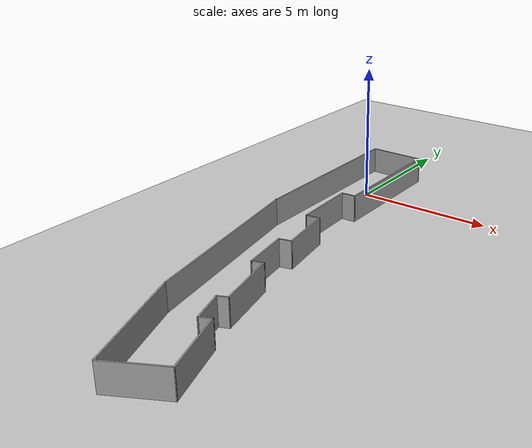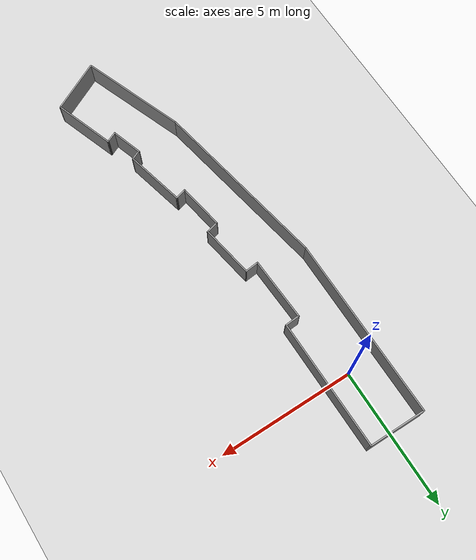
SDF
<sdf version="1.4">
  <world name="default">

    <!-- A global light source -->
    <include>
      <uri>model://sun</uri>
    </include>

    <!-- A ground plane -->
    <include>
      <uri>model://ground_plane</uri>
    </include>

    <physics type="ode">
      <real_time_update_rate>1000.0</real_time_update_rate>
      <max_step_size>0.001</max_step_size>
      <real_time_factor>1</real_time_factor>
      <ode>
        <solver>
          <type>quick</type>
          <iters>150</iters>
          <precon_iters>0</precon_iters>
          <sor>1.400000</sor>
          <use_dynamic_moi_rescaling>1</use_dynamic_moi_rescaling>
        </solver>
        <constraints>
          <cfm>0.00001</cfm>
          <erp>0.2</erp>
          <contact_max_correcting_vel>2000.000000</contact_max_correcting_vel>
          <contact_surface_layer>0.01000</contact_surface_layer>
        </constraints>
      </ode>
    </physics>

    <!-- ITI Gang -->
    <include>
      <uri>model://itiGang</uri>
	<pose>1.116 -6.095 0 0 0 -1.59</pose>
    </include>

    <scene>
      <ambient>0.4 0.4 0.4 1</ambient>
      <background>0.7 0.7 0.7 1</background>
      <shadows>true</shadows>
    </scene>

    <gui fullscreen='0'>
      <camera name='user_camera'>
        <pose>0.0 0.0 17.0 0 1.5708 0</pose>
        <view_controller>orbit</view_controller>
      </camera>
    </gui>
  </world>
</sdf>

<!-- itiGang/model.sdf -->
<sdf version='1.6'>
  <model name='itiGang'>
    <pose frame=''>1.03233 -1.27381 0 0 -0 0</pose>
    <link name='Wall_0'>
      <collision name='Wall_0_Collision'>
        <geometry>
          <box>
            <size>2.11869 0.05 1</size>
          </box>
        </geometry>
        <pose frame=''>0 0 0.5 0 -0 0</pose>
      </collision>
      <visual name='Wall_0_Visual'>
        <pose frame=''>0 0 0.5 0 -0 0</pose>
        <geometry>
          <box>
            <size>2.11869 0.05 1</size>
          </box>
        </geometry>
        <material>
          <script>
            <uri>file://media/materials/scripts/gazebo.material</uri>
            <name>Gazebo/Grey</name>
          </script>
          <ambient>1 1 1 1</ambient>
        </material>
      </visual>
      <pose frame=''>-8.43733 -1.36519 0 0 0 -1.55629</pose>
    </link>
    <link name='Wall_1'>
      <collision name='Wall_1_Collision'>
        <geometry>
          <box>
            <size>6.68346 0.05 1</size>
          </box>
        </geometry>
        <pose frame=''>0 0 0.5 0 -0 0</pose>
      </collision>
      <visual name='Wall_1_Visual'>
        <pose frame=''>0 0 0.5 0 -0 0</pose>
        <geometry>
          <box>
            <size>6.68346 0.05 1</size>
          </box>
        </geometry>
        <material>
          <script>
            <uri>file://media/materials/scripts/gazebo.material</uri>
            <name>Gazebo/Grey</name>
          </script>
          <ambient>1 1 1 1</ambient>
        </material>
      </visual>
      <pose frame=''>-5.10683 -2.30819 0 0 -0 0.02744</pose>
    </link>
    <link name='Wall_12'>
      <collision name='Wall_12_Collision'>
        <geometry>
          <box>
            <size>2.06476 0.05 1</size>
          </box>
        </geometry>
        <pose frame=''>0 0 0.5 0 -0 0</pose>
      </collision>
      <visual name='Wall_12_Visual'>
        <pose frame=''>0 0 0.5 0 -0 0</pose>
        <geometry>
          <box>
            <size>2.06476 0.05 1</size>
          </box>
        </geometry>
        <material>
          <script>
            <uri>file://media/materials/scripts/gazebo.material</uri>
            <name>Gazebo/Grey</name>
          </script>
          <ambient>1 1 1 1</ambient>
        </material>
      </visual>
      <pose frame=''>7.95717 1.50881 0 0 -0 2.07486</pose>
    </link>
    <link name='Wall_13'>
      <collision name='Wall_13_Collision'>
        <geometry>
          <box>
            <size>2.34074 0.05 1</size>
          </box>
        </geometry>
        <pose frame=''>0 0 0.5 0 -0 0</pose>
      </collision>
      <visual name='Wall_13_Visual'>
        <pose frame=''>0 0 0.5 0 -0 0</pose>
        <geometry>
          <box>
            <size>2.34074 0.05 1</size>
          </box>
        </geometry>
        <material>
          <script>
            <uri>file://media/materials/scripts/gazebo.material</uri>
            <name>Gazebo/Grey</name>
          </script>
          <ambient>1 1 1 1</ambient>
        </material>
      </visual>
      <pose frame=''>6.39867 1.98781 0 0 0 -2.782</pose>
    </link>
    <link name='Wall_14'>
      <collision name='Wall_14_Collision'>
        <geometry>
          <box>
            <size>0.457743 0.05 1</size>
          </box>
        </geometry>
        <pose frame=''>0 0 0.5 0 -0 0</pose>
      </collision>
      <visual name='Wall_14_Visual'>
        <pose frame=''>0 0 0.5 0 -0 0</pose>
        <geometry>
          <box>
            <size>0.457743 0.05 1</size>
          </box>
        </geometry>
        <material>
          <script>
            <uri>file://media/materials/scripts/gazebo.material</uri>
            <name>Gazebo/Grey</name>
          </script>
          <ambient>1 1 1 1</ambient>
        </material>
      </visual>
      <pose frame=''>5.41767 1.40231 0 0 0 -1.10824</pose>
    </link>
    <link name='Wall_15'>
      <collision name='Wall_15_Collision'>
        <geometry>
          <box>
            <size>1.20894 0.05 1</size>
          </box>
        </geometry>
        <pose frame=''>0 0 0.5 0 -0 0</pose>
      </collision>
      <visual name='Wall_15_Visual'>
        <pose frame=''>0 0 0.5 0 -0 0</pose>
        <geometry>
          <box>
            <size>1.20894 0.05 1</size>
          </box>
        </geometry>
        <material>
          <script>
            <uri>file://media/materials/scripts/gazebo.material</uri>
            <name>Gazebo/Grey</name>
          </script>
          <ambient>1 1 1 1</ambient>
        </material>
      </visual>
      <pose frame=''>4.96117 1.02981 0 0 0 -2.80756</pose>
    </link>
    <link name='Wall_16'>
      <collision name='Wall_16_Collision'>
        <geometry>
          <box>
            <size>0.403683 0.05 1</size>
          </box>
        </geometry>
        <pose frame=''>0 0 0.5 0 -0 0</pose>
      </collision>
      <visual name='Wall_16_Visual'>
        <pose frame=''>0 0 0.5 0 -0 0</pose>
        <geometry>
          <box>
            <size>0.403683 0.05 1</size>
          </box>
        </geometry>
        <material>
          <script>
            <uri>file://media/materials/scripts/gazebo.material</uri>
            <name>Gazebo/Grey</name>
          </script>
          <ambient>1 1 1 1</ambient>
        </material>
      </visual>
      <pose frame=''>4.33767 0.99931 0 0 -0 2.01546</pose>
    </link>
    <link name='Wall_17'>
      <collision name='Wall_17_Collision'>
        <geometry>
          <box>
            <size>2.25219 0.05 1</size>
          </box>
        </geometry>
        <pose frame=''>0 0 0.5 0 -0 0</pose>
      </collision>
      <visual name='Wall_17_Visual'>
        <pose frame=''>0 0 0.5 0 -0 0</pose>
        <geometry>
          <box>
            <size>2.25219 0.05 1</size>
          </box>
        </geometry>
        <material>
          <script>
            <uri>file://media/materials/scripts/gazebo.material</uri>
            <name>Gazebo/Grey</name>
          </script>
          <ambient>1 1 1 1</ambient>
        </material>
      </visual>
      <pose frame=''>3.19717 0.87781 0 0 0 -2.88351</pose>
    </link>
    <link name='Wall_18'>
      <collision name='Wall_18_Collision'>
        <geometry>
          <box>
            <size>0.449487 0.05 1</size>
          </box>
        </geometry>
        <pose frame=''>0 0 0.5 0 -0 0</pose>
      </collision>
      <visual name='Wall_18_Visual'>
        <pose frame=''>0 0 0.5 0 -0 0</pose>
        <geometry>
          <box>
            <size>0.449487 0.05 1</size>
          </box>
        </geometry>
        <material>
          <script>
            <uri>file://media/materials/scripts/gazebo.material</uri>
            <name>Gazebo/Grey</name>
          </script>
          <ambient>1 1 1 1</ambient>
        </material>
      </visual>
      <pose frame=''>2.19317 0.40631 0 0 0 -1.26328</pose>
    </link>
    <link name='Wall_19'>
      <collision name='Wall_19_Collision'>
        <geometry>
          <box>
            <size>1.73767 0.05 1</size>
          </box>
        </geometry>
        <pose frame=''>0 0 0.5 0 -0 0</pose>
      </collision>
      <visual name='Wall_19_Visual'>
        <pose frame=''>0 0 0.5 0 -0 0</pose>
        <geometry>
          <box>
            <size>1.73767 0.05 1</size>
          </box>
        </geometry>
        <material>
          <script>
            <uri>file://media/materials/scripts/gazebo.material</uri>
            <name>Gazebo/Grey</name>
          </script>
          <ambient>1 1 1 1</ambient>
        </material>
      </visual>
      <pose frame=''>1.42517 0.05631 0 0 0 -2.9514</pose>
    </link>
    <link name='Wall_2'>
      <collision name='Wall_2_Collision'>
        <geometry>
          <box>
            <size>6.72835 0.05 1</size>
          </box>
        </geometry>
        <pose frame=''>0 0 0.5 0 -0 0</pose>
      </collision>
      <visual name='Wall_2_Visual'>
        <pose frame=''>0 0 0.5 0 -0 0</pose>
        <geometry>
          <box>
            <size>6.72835 0.05 1</size>
          </box>
        </geometry>
        <material>
          <script>
            <uri>file://media/materials/scripts/gazebo.material</uri>
            <name>Gazebo/Grey</name>
          </script>
          <ambient>1 1 1 1</ambient>
        </material>
      </visual>
      <pose frame=''>1.47867 -1.54019 0 0 -0 0.204149</pose>
    </link>
    <link name='Wall_20'>
      <collision name='Wall_20_Collision'>
        <geometry>
          <box>
            <size>0.493007 0.05 1</size>
          </box>
        </geometry>
        <pose frame=''>0 0 0.5 0 -0 0</pose>
      </collision>
      <visual name='Wall_20_Visual'>
        <pose frame=''>0 0 0.5 0 -0 0</pose>
        <geometry>
          <box>
            <size>0.493007 0.05 1</size>
          </box>
        </geometry>
        <material>
          <script>
            <uri>file://media/materials/scripts/gazebo.material</uri>
            <name>Gazebo/Grey</name>
          </script>
          <ambient>1 1 1 1</ambient>
        </material>
      </visual>
      <pose frame=''>0.535674 0.10981 0 0 -0 1.84972</pose>
    </link>
    <link name='Wall_21'>
      <collision name='Wall_21_Collision'>
        <geometry>
          <box>
            <size>2.00046 0.05 1</size>
          </box>
        </geometry>
        <pose frame=''>0 0 0.5 0 -0 0</pose>
      </collision>
      <visual name='Wall_21_Visual'>
        <pose frame=''>0 0 0.5 0 -0 0</pose>
        <geometry>
          <box>
            <size>2.00046 0.05 1</size>
          </box>
        </geometry>
        <material>
          <script>
            <uri>file://media/materials/scripts/gazebo.material</uri>
            <name>Gazebo/Grey</name>
          </script>
          <ambient>1 1 1 1</ambient>
        </material>
      </visual>
      <pose frame=''>-0.483326 0.14031 0 0 0 -2.95335</pose>
    </link>
    <link name='Wall_22'>
      <collision name='Wall_22_Collision'>
        <geometry>
          <box>
            <size>0.540805 0.05 1</size>
          </box>
        </geometry>
        <pose frame=''>0 0 0.5 0 -0 0</pose>
      </collision>
      <visual name='Wall_22_Visual'>
        <pose frame=''>0 0 0.5 0 -0 0</pose>
        <geometry>
          <box>
            <size>0.540805 0.05 1</size>
          </box>
        </geometry>
        <material>
          <script>
            <uri>file://media/materials/scripts/gazebo.material</uri>
            <name>Gazebo/Grey</name>
          </script>
          <ambient>1 1 1 1</ambient>
        </material>
      </visual>
      <pose frame=''>-1.41083 -0.28569 0 0 0 -1.44619</pose>
    </link>
    <link name='Wall_23'>
      <collision name='Wall_23_Collision'>
        <geometry>
          <box>
            <size>2.36802 0.05 1</size>
          </box>
        </geometry>
        <pose frame=''>0 0 0.5 0 -0 0</pose>
      </collision>
      <visual name='Wall_23_Visual'>
        <pose frame=''>0 0 0.5 0 -0 0</pose>
        <geometry>
          <box>
            <size>2.36802 0.05 1</size>
          </box>
        </geometry>
        <material>
          <script>
            <uri>file://media/materials/scripts/gazebo.material</uri>
            <name>Gazebo/Grey</name>
          </script>
          <ambient>1 1 1 1</ambient>
        </material>
      </visual>
      <pose frame=''>-2.53633 -0.61269 0 0 0 -3.06949</pose>
    </link>
    <link name='Wall_24'>
      <collision name='Wall_24_Collision'>
        <geometry>
          <box>
            <size>0.569042 0.05 1</size>
          </box>
        </geometry>
        <pose frame=''>0 0 0.5 0 -0 0</pose>
      </collision>
      <visual name='Wall_24_Visual'>
        <pose frame=''>0 0 0.5 0 -0 0</pose>
        <geometry>
          <box>
            <size>0.569042 0.05 1</size>
          </box>
        </geometry>
        <material>
          <script>
            <uri>file://media/materials/scripts/gazebo.material</uri>
            <name>Gazebo/Grey</name>
          </script>
          <ambient>1 1 1 1</ambient>
        </material>
      </visual>
      <pose frame=''>-3.71533 -0.43769 0 0 -0 1.65954</pose>
    </link>
    <link name='Wall_25'>
      <collision name='Wall_25_Collision'>
        <geometry>
          <box>
            <size>4.75172 0.05 1</size>
          </box>
        </geometry>
        <pose frame=''>0 0 0.5 0 -0 0</pose>
      </collision>
      <visual name='Wall_25_Visual'>
        <pose frame=''>0 0 0.5 0 -0 0</pose>
        <geometry>
          <box>
            <size>4.75172 0.05 1</size>
          </box>
        </geometry>
        <material>
          <script>
            <uri>file://media/materials/scripts/gazebo.material</uri>
            <name>Gazebo/Grey</name>
          </script>
          <ambient>1 1 1 1</ambient>
        </material>
      </visual>
      <pose frame=''>-6.08783 -0.25519 0 0 0 -3.10926</pose>
    </link>
    <link name='Wall_3'>
      <collision name='Wall_3_Collision'>
        <geometry>
          <box>
            <size>4.01477 0.05 1</size>
          </box>
        </geometry>
        <pose frame=''>0 0 0.5 0 -0 0</pose>
      </collision>
      <visual name='Wall_3_Visual'>
        <pose frame=''>0 0 0.5 0 -0 0</pose>
        <geometry>
          <box>
            <size>4.01477 0.05 1</size>
          </box>
        </geometry>
        <material>
          <script>
            <uri>file://media/materials/scripts/gazebo.material</uri>
            <name>Gazebo/Grey</name>
          </script>
          <ambient>1 1 1 1</ambient>
        </material>
      </visual>
      <pose frame=''>6.58867 -0.12569 0 0 -0 0.381209</pose>
    </link>
    <static>1</static>
  </model>
</sdf>
